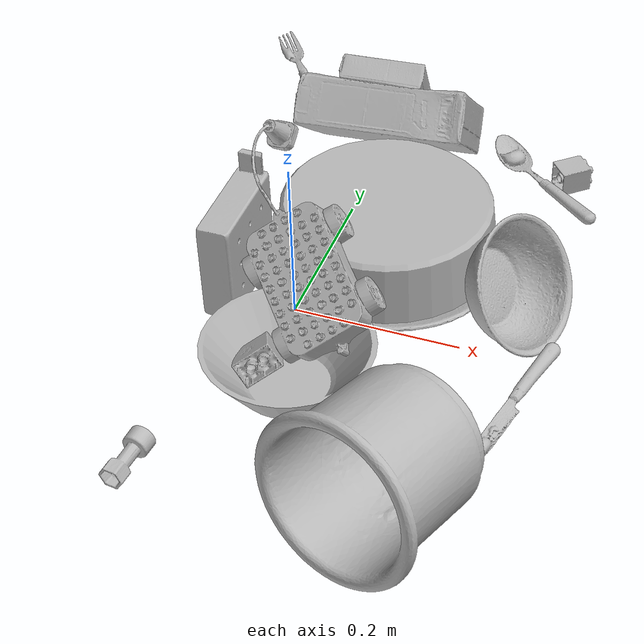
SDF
<sdf version="1.4">
  <world name="default">
    <light name="light1" type="point">
      <pose>0 0 1 0 0 0</pose>
      <diffuse>3 3 3 1</diffuse>
      <specular>3 3 3 1</specular>
    </light>
    <light name="light2" type="point">
      <pose>0 0.5 2 0 0 0</pose>
      <diffuse>1 1 1 1</diffuse>
      <specular>1 1 1 1</specular>
    </light>
    <light name="light3" type="point">
      <pose>0 0.5 2 0 0 0</pose>
      <diffuse>3 3 3 1</diffuse>
      <specular>3 3 3 1</specular>
    </light>
    <scene>
      <ambient>0.7 0.7 0.7</ambient>
    </scene>
    <model name="plate1">
      <link name="link_plate1">
        <collision name="default">
          <geometry>
            <mesh>
              <uri>model://plate/collision_meshes/collision.obj</uri>
              <scale>1.0 1.0 1.0</scale>
            </mesh>
          </geometry>
          <surface>
            <friction>
              <ode>
                <mu>0.5</mu>
                <mu2>0.5</mu2>
              </ode>
            </friction>
          <contact>
        <ode>
            <max_vel>0</max_vel>
            <min_depth>0.0001</min_depth>
            <kp>1e8</kp>
        </ode>
    </contact></surface>
        </collision>
        <visual name="default">
          <geometry>
            <mesh>
              <uri>model://plate/visual_meshes/visual.dae</uri>
              <scale>1.0 1.0 1.0</scale>
            </mesh>
          </geometry>
        </visual>
        <inertial>
          <mass>0.2518167495727539</mass>
          <pose>-0.000604460306931287 0.0002782583760563284 -0.001056198962032795 0.0022187362427659595 -0.003225514577586686 0.4526257716004426</pose>
          <inertia>
            <ixx>0.0011780038</ixx>
            <iyy>0.001166737</iyy>
            <izz>0.0023039998</izz>
            <ixy>0</ixy>
            <ixz>0</ixz>
            <iyz>0</iyz>
          </inertia>
        </inertial>
      </link>
      <pose>0.08734126389026642 0.09960268437862396 0.013735280372202396 -3.3794641436700835e-05 7.11406704799649e-06 2.4892262799198885</pose>
    </model>
    <model name="plate2">
      <link name="link_plate2">
        <collision name="default">
          <geometry>
            <mesh>
              <uri>model://pan_tefal/collision_meshes/collision.obj</uri>
              <scale>1.0 1.0 1.0</scale>
            </mesh>
          </geometry>
          <surface>
            <friction>
              <ode>
                <mu>0.5</mu>
                <mu2>0.5</mu2>
              </ode>
            </friction>
          <contact>
        <ode>
            <max_vel>0</max_vel>
            <min_depth>0.0001</min_depth>
            <kp>1e8</kp>
        </ode>
    </contact></surface>
        </collision>
        <visual name="default">
          <geometry>
            <mesh>
              <uri>model://pan_tefal/visual_meshes/visual.dae</uri>
              <scale>1.0 1.0 1.0</scale>
            </mesh>
          </geometry>
        </visual>
        <inertial>
          <mass>1.062379002571106</mass>
          <pose>-0.00018001841090153903 3.2791107514640316e-05 -0.008514937944710255 0.0008190335190592257 -0.00033013878845789875 -0.3318630487039029</pose>
          <inertia>
            <ixx>0.0073335525</ixx>
            <iyy>0.007380832</iyy>
            <izz>0.013499655</izz>
            <ixy>0</ixy>
            <ixz>0</ixz>
            <iyz>0</iyz>
          </inertia>
        </inertial>
      </link>
      <pose>0.07584961503744125 0.10848361253738403 0.06423328071832657 -3.1386706964040383 -0.00010818042208900348 1.8846980799740933</pose>
    </model>
    <model name="bowl1">
      <link name="link_bowl1">
        <collision name="default">
          <geometry>
            <mesh>
              <uri>model://bowl/collision_meshes/collision.obj</uri>
              <scale>1.0 1.0 1.0</scale>
            </mesh>
          </geometry>
          <surface>
            <friction>
              <ode>
                <mu>0.5</mu>
                <mu2>0.5</mu2>
              </ode>
            </friction>
          <contact>
        <ode>
            <max_vel>0</max_vel>
            <min_depth>0.0001</min_depth>
            <kp>1e8</kp>
        </ode>
    </contact></surface>
        </collision>
        <visual name="default">
          <geometry>
            <mesh>
              <uri>model://bowl/visual_meshes/visual.dae</uri>
              <scale>1.0 1.0 1.0</scale>
            </mesh>
          </geometry>
        </visual>
        <inertial>
          <mass>0.06917417049407959</mass>
          <pose>0.00020445069822017103 -0.0010302119189873338 -0.0008042645640671253 -0.015764106225313407 0.014546789960746879 0.7140402093907182</pose>
          <inertia>
            <ixx>0.00015889853</ixx>
            <iyy>0.00015534814</iyy>
            <izz>0.000267322</izz>
            <ixy>0</ixy>
            <ixz>0</ixz>
            <iyz>0</iyz>
          </inertia>
        </inertial>
      </link>
      <pose>0.2408418506383896 0.05480090156197548 0.058408938348293304 0.6774179743667136 -0.8796479893817291 2.0428107588080735</pose>
    </model>
    <model name="bowl2">
      <link name="link_bowl2">
        <collision name="default">
          <geometry>
            <mesh>
              <uri>model://bowl_a/collision_meshes/collision.obj</uri>
              <scale>1.0 1.0 1.0</scale>
            </mesh>
          </geometry>
          <surface>
            <friction>
              <ode>
                <mu>0.5</mu>
                <mu2>0.5</mu2>
              </ode>
            </friction>
          <contact>
        <ode>
            <max_vel>0</max_vel>
            <min_depth>0.0001</min_depth>
            <kp>1e8</kp>
        </ode>
    </contact></surface>
        </collision>
        <visual name="default">
          <geometry>
            <mesh>
              <uri>model://bowl_a/visual_meshes/visual.dae</uri>
              <scale>1.0 1.0 1.0</scale>
            </mesh>
          </geometry>
        </visual>
        <inertial>
          <mass>0.33581992983818054</mass>
          <pose>0.00027867587050423026 4.7312365495599806e-05 -0.0013765293406322598 -0.0009805275277335347 -0.0010938264345752996 -0.19124334191203107</pose>
          <inertia>
            <ixx>0.00095609494</ixx>
            <iyy>0.0009619646</iyy>
            <izz>0.0017004515</izz>
            <ixy>0</ixy>
            <ixz>0</ixz>
            <iyz>0</iyz>
          </inertia>
        </inertial>
      </link>
      <pose>0.039850324392318726 -0.11847507208585739 0.030383100733160973 1.6933521376649992e-05 -4.993995628672537e-06 -0.4973925627578261</pose>
    </model>
    <model name="silverware1">
      <link name="link_silverware1">
        <collision name="default">
          <geometry>
            <mesh>
              <uri>model://spoon/collision_meshes/collision.obj</uri>
              <scale>1.0 1.0 1.0</scale>
            </mesh>
          </geometry>
          <surface>
            <friction>
              <ode>
                <mu>0.5</mu>
                <mu2>0.5</mu2>
              </ode>
            </friction>
          <contact>
        <ode>
            <max_vel>0</max_vel>
            <min_depth>0.0001</min_depth>
            <kp>1e8</kp>
        </ode>
    </contact></surface>
        </collision>
        <visual name="default">
          <geometry>
            <mesh>
              <uri>model://spoon/visual_meshes/visual.dae</uri>
              <scale>1.0 1.0 1.0</scale>
            </mesh>
          </geometry>
        </visual>
        <inertial>
          <mass>0.02635110728442669</mass>
          <pose>-0.005526317283511162 -0.0016034177970141172 -0.0007271651993505657 0.03521639754710896 -0.03906583271405073 0.0061506130160543454</pose>
          <inertia>
            <ixx>1.4656912e-06</ixx>
            <iyy>0.0001002651</iyy>
            <izz>0.00010098792</izz>
            <ixy>0</ixy>
            <ixz>0</ixz>
            <iyz>0</iyz>
          </inertia>
        </inertial>
      </link>
      <pose>0.21236814558506012 0.3212965726852417 0.008385262452065945 0.006729210583712175 0.026892997453184735 2.475580112659157</pose>
    </model>
    <model name="box1">
      <link name="link_box1">
        <collision name="default">
          <geometry>
            <mesh>
              <uri>model://cracker_box/collision_meshes/collision.obj</uri>
              <scale>1.0 1.0 1.0</scale>
            </mesh>
          </geometry>
          <surface>
            <friction>
              <ode>
                <mu>0.5</mu>
                <mu2>0.5</mu2>
              </ode>
            </friction>
          <contact>
        <ode>
            <max_vel>0</max_vel>
            <min_depth>0.0001</min_depth>
            <kp>1e8</kp>
        </ode>
    </contact></surface>
        </collision>
        <visual name="default">
          <geometry>
            <mesh>
              <uri>model://cracker_box/visual_meshes/visual.dae</uri>
              <scale>1.0 1.0 1.0</scale>
            </mesh>
          </geometry>
        </visual>
        <inertial>
          <mass>1.9942995309829712</mass>
          <pose>0.0009464178583584726 0.00025434247800149024 -0.0017029533628374338 -0.00031620747948387436 -0.011106490532043566 0.0025467943028284904</pose>
          <inertia>
            <ixx>0.005072607</ixx>
            <iyy>0.008375872</iyy>
            <izz>0.011953138</izz>
            <ixy>0</ixy>
            <ixz>0</ixz>
            <iyz>0</iyz>
          </inertia>
        </inertial>
      </link>
      <pose>0.012632547877728939 0.30876708030700684 0.07664789259433746 0.6866199874135077 0.016264642174886622 -3.044724762795033</pose>
    </model>
    <model name="box2">
      <link name="link_box2">
        <collision name="default">
          <geometry>
            <mesh>
              <uri>model://pudding_box/collision_meshes/collision.obj</uri>
              <scale>1.0 1.0 1.0</scale>
            </mesh>
          </geometry>
          <surface>
            <friction>
              <ode>
                <mu>0.5</mu>
                <mu2>0.5</mu2>
              </ode>
            </friction>
          <contact>
        <ode>
            <max_vel>0</max_vel>
            <min_depth>0.0001</min_depth>
            <kp>1e8</kp>
        </ode>
    </contact></surface>
        </collision>
        <visual name="default">
          <geometry>
            <mesh>
              <uri>model://pudding_box/visual_meshes/visual.dae</uri>
              <scale>1.0 1.0 1.0</scale>
            </mesh>
          </geometry>
        </visual>
        <inertial>
          <mass>0.5201411247253418</mass>
          <pose>0.0004894821904599667 0.0008067885646596551 -0.0005188828217796981 0.00521310178321913 -0.006603799649863257 0.020079825157321304</pose>
          <inertia>
            <ixx>0.0005879929</ixx>
            <iyy>0.00039560578</iyy>
            <izz>0.00086832506</izz>
            <ixy>0</ixy>
            <ixz>0</ixz>
            <iyz>0</iyz>
          </inertia>
        </inertial>
      </link>
      <pose>-0.029697224497795105 0.41223445534706116 0.04556301236152649 -0.01616737904032394 -0.9869502490026353 -1.477855834738513</pose>
    </model>
    <model name="cup1">
      <link name="link_cup1">
        <collision name="default">
          <geometry>
            <mesh>
              <uri>model://i_cups/collision_meshes/collision.obj</uri>
              <scale>2.0 2.0 2.0</scale>
            </mesh>
          </geometry>
          <surface>
            <friction>
              <ode>
                <mu>0.5</mu>
                <mu2>0.5</mu2>
              </ode>
            </friction>
          <contact>
        <ode>
            <max_vel>0</max_vel>
            <min_depth>0.0001</min_depth>
            <kp>1e8</kp>
        </ode>
    </contact></surface>
        </collision>
        <visual name="default">
          <geometry>
            <mesh>
              <uri>model://i_cups/visual_meshes/visual.dae</uri>
              <scale>2.0 2.0 2.0</scale>
            </mesh>
          </geometry>
        </visual>
        <inertial>
          <mass>0.946932315826416</mass>
          <pose>0.00022480011102743447 0.0003359477559570223 -0.0017158038681373 -0.02898277199923076 -0.03987335280003036 -0.34591530516328983</pose>
          <inertia>
            <ixx>0.005244167</ixx>
            <iyy>0.0052903723</iyy>
            <izz>0.005861205</izz>
            <ixy>0</ixy>
            <ixz>0</ixz>
            <iyz>0</iyz>
          </inertia>
        </inertial>
      </link>
      <pose>0.20122213661670685 -0.2834566831588745 0.08981359750032425 1.3919871233016847 -0.8573865932851692 -0.19717140082337198</pose>
    </model>
    <model name="silverware2">
      <link name="link_silverware2">
        <collision name="default">
          <geometry>
            <mesh>
              <uri>model://fork/collision_meshes/collision.obj</uri>
              <scale>1.0 1.0 1.0</scale>
            </mesh>
          </geometry>
          <surface>
            <friction>
              <ode>
                <mu>0.5</mu>
                <mu2>0.5</mu2>
              </ode>
            </friction>
          <contact>
        <ode>
            <max_vel>0</max_vel>
            <min_depth>0.0001</min_depth>
            <kp>1e8</kp>
        </ode>
    </contact></surface>
        </collision>
        <visual name="default">
          <geometry>
            <mesh>
              <uri>model://fork/visual_meshes/visual.dae</uri>
              <scale>1.0 1.0 1.0</scale>
            </mesh>
          </geometry>
        </visual>
        <inertial>
          <mass>0.03207480534911156</mass>
          <pose>-0.02957005240023136 0.00046588238910771906 0.0003218861820641905 -0.013551414501779666 -0.010977842682601763 0.014453906756127453</pose>
          <inertia>
            <ixx>1.1244033e-06</ixx>
            <iyy>8.373807e-05</iyy>
            <izz>8.424099e-05</izz>
            <ixy>0</ixy>
            <ixz>0</ixz>
            <iyz>0</iyz>
          </inertia>
        </inertial>
      </link>
      <pose>-0.16617050766944885 0.45873767137527466 0.0056868321262300014 -0.1903537187953477 0.024804788572549252 2.1859937553799837</pose>
    </model>
    <model name="silverware3">
      <link name="link_silverware3">
        <collision name="default">
          <geometry>
            <mesh>
              <uri>model://knife/collision_meshes/collision.obj</uri>
              <scale>1.0 1.0 1.0</scale>
            </mesh>
          </geometry>
          <surface>
            <friction>
              <ode>
                <mu>0.5</mu>
                <mu2>0.5</mu2>
              </ode>
            </friction>
          <contact>
        <ode>
            <max_vel>0</max_vel>
            <min_depth>0.0001</min_depth>
            <kp>1e8</kp>
        </ode>
    </contact></surface>
        </collision>
        <visual name="default">
          <geometry>
            <mesh>
              <uri>model://knife/visual_meshes/visual.dae</uri>
              <scale>1.0 1.0 1.0</scale>
            </mesh>
          </geometry>
        </visual>
        <inertial>
          <mass>0.02260335348546505</mass>
          <pose>-0.023785259574651718 0.0015275129117071629 5.062025593360886e-05 0.073049853839256 0.017248417767033373 -0.0074098225522862896</pose>
          <inertia>
            <ixx>6.41575e-07</ixx>
            <iyy>8.6838445e-05</iyy>
            <izz>8.704508e-05</izz>
            <ixy>0</ixy>
            <ixz>0</ixz>
            <iyz>0</iyz>
          </inertia>
        </inertial>
      </link>
      <pose>0.2838091552257538 -0.07523642480373383 0.005810650996863842 2.889232089060155 0.025909041899575803 -1.7825161943477856</pose>
    </model>
    <model name="toy1">
      <link name="link_toy1">
        <collision name="default">
          <geometry>
            <mesh>
              <uri>model://nine_hole_peg_test/collision_meshes/collision.obj</uri>
              <scale>1.0 1.0 1.0</scale>
            </mesh>
          </geometry>
          <surface>
            <friction>
              <ode>
                <mu>0.5</mu>
                <mu2>0.5</mu2>
              </ode>
            </friction>
          <contact>
        <ode>
            <max_vel>0</max_vel>
            <min_depth>0.0001</min_depth>
            <kp>1e8</kp>
        </ode>
    </contact></surface>
        </collision>
        <visual name="default">
          <geometry>
            <mesh>
              <uri>model://nine_hole_peg_test/visual_meshes/visual.dae</uri>
              <scale>1.0 1.0 1.0</scale>
            </mesh>
          </geometry>
        </visual>
        <inertial>
          <mass>0.3368244469165802</mass>
          <pose>-0.0046173869632184505 -0.009647615253925323 2.6460689696250483e-05 -0.001466679946039042 0.000719417968587533 -0.6342416610336568</pose>
          <inertia>
            <ixx>0.00052668044</ixx>
            <iyy>0.000491756</iyy>
            <izz>0.00092289934</izz>
            <ixy>0</ixy>
            <ixz>0</ixz>
            <iyz>0</iyz>
          </inertia>
        </inertial>
      </link>
      <pose>-0.07858444005250931 0.02613038942217827 0.07401725649833679 1.558512712509534 -0.007624693521715644 1.5704138414769788</pose>
    </model>
    <model name="toy2">
      <link name="link_toy2">
        <collision name="default">
          <geometry>
            <mesh>
              <uri>model://c_toy_airplane/collision_meshes/collision.obj</uri>
              <scale>1.0 1.0 1.0</scale>
            </mesh>
          </geometry>
          <surface>
            <friction>
              <ode>
                <mu>0.5</mu>
                <mu2>0.5</mu2>
              </ode>
            </friction>
          <contact>
        <ode>
            <max_vel>0</max_vel>
            <min_depth>0.0001</min_depth>
            <kp>1e8</kp>
        </ode>
    </contact></surface>
        </collision>
        <visual name="default">
          <geometry>
            <mesh>
              <uri>model://c_toy_airplane/visual_meshes/visual.dae</uri>
              <scale>1.0 1.0 1.0</scale>
            </mesh>
          </geometry>
        </visual>
        <inertial>
          <mass>0.025849465280771255</mass>
          <pose>-0.000230242803809233 -4.4294804979472246e-07 -0.006080531980842352 -0.006193997552816779 -0.016797268968147806 0.7655666586292194</pose>
          <inertia>
            <ixx>1.1869546e-05</ixx>
            <iyy>1.1836047e-05</iyy>
            <izz>2.7867347e-06</izz>
            <ixy>0</ixy>
            <ixz>0</ixz>
            <iyz>0</iyz>
          </inertia>
        </inertial>
      </link>
      <pose>-0.07515498250722885 -0.28962981700897217 0.014860676601529121 -1.6422933684888652 -0.8111693947891762 3.0653216736005233</pose>
    </model>
    <model name="toy3">
      <link name="link_toy3">
        <collision name="default">
          <geometry>
            <mesh>
              <uri>model://g_lego_duplo/collision_meshes/collision.obj</uri>
              <scale>1.0 1.0 1.0</scale>
            </mesh>
          </geometry>
          <surface>
            <friction>
              <ode>
                <mu>0.5</mu>
                <mu2>0.5</mu2>
              </ode>
            </friction>
          <contact>
        <ode>
            <max_vel>0</max_vel>
            <min_depth>0.0001</min_depth>
            <kp>1e8</kp>
        </ode>
    </contact></surface>
        </collision>
        <visual name="default">
          <geometry>
            <mesh>
              <uri>model://g_lego_duplo/visual_meshes/visual.dae</uri>
              <scale>1.0 1.0 1.0</scale>
            </mesh>
          </geometry>
        </visual>
        <inertial>
          <mass>0.44857048988342285</mass>
          <pose>-0.05004768818616867 0.0017554624937474728 0.0038806761149317026 0.010962989380518968 0.03810827633819491 -0.09653029550410545</pose>
          <inertia>
            <ixx>0.0006499838</ixx>
            <iyy>0.00196511</iyy>
            <izz>0.0024584262</izz>
            <ixy>0</ixy>
            <ixz>0</ixz>
            <iyz>0</iyz>
          </inertia>
        </inertial>
      </link>
      <pose>0.0020333826541900635 0.0017877519130706787 0.1107356995344162 -0.6125642491484203 -0.3997691815545419 2.3211056448404577</pose>
    </model>
    <model name="toy4">
      <link name="link_toy4">
        <collision name="default">
          <geometry>
            <mesh>
              <uri>model://b_lego_duplo/collision_meshes/collision.obj</uri>
              <scale>1.0 1.0 1.0</scale>
            </mesh>
          </geometry>
          <surface>
            <friction>
              <ode>
                <mu>0.5</mu>
                <mu2>0.5</mu2>
              </ode>
            </friction>
          <contact>
        <ode>
            <max_vel>0</max_vel>
            <min_depth>0.0001</min_depth>
            <kp>1e8</kp>
        </ode>
    </contact></surface>
        </collision>
        <visual name="default">
          <geometry>
            <mesh>
              <uri>model://b_lego_duplo/visual_meshes/visual.dae</uri>
              <scale>1.0 1.0 1.0</scale>
            </mesh>
          </geometry>
        </visual>
        <inertial>
          <mass>0.028142115101218224</mass>
          <pose>-0.00011053047637687996 -9.15253895072965e-06 0.0019294291269034147 -0.03749502345465157 -0.02635389323626884 0.4519044936865358</pose>
          <inertia>
            <ixx>5.759495e-06</ixx>
            <iyy>5.798213e-06</iyy>
            <izz>5.1315224e-06</izz>
            <ixy>0</ixy>
            <ixz>0</ixz>
            <iyz>0</iyz>
          </inertia>
        </inertial>
      </link>
      <pose>0.24691861867904663 0.33703669905662537 0.01612129807472229 1.572377299197238 -0.012011112436373697 2.2894010072051283</pose>
    </model>
    <model name="toy5">
      <link name="link_toy5">
        <collision name="default">
          <geometry>
            <mesh>
              <uri>model://d_lego_duplo/collision_meshes/collision.obj</uri>
              <scale>1.0 1.0 1.0</scale>
            </mesh>
          </geometry>
          <surface>
            <friction>
              <ode>
                <mu>0.5</mu>
                <mu2>0.5</mu2>
              </ode>
            </friction>
          <contact>
        <ode>
            <max_vel>0</max_vel>
            <min_depth>0.0001</min_depth>
            <kp>1e8</kp>
        </ode>
    </contact></surface>
        </collision>
        <visual name="default">
          <geometry>
            <mesh>
              <uri>model://d_lego_duplo/visual_meshes/visual.dae</uri>
              <scale>1.0 1.0 1.0</scale>
            </mesh>
          </geometry>
        </visual>
        <inertial>
          <mass>0.03456217050552368</mass>
          <pose>0.00283056334592402 0.00016366186900995672 0.0008589798817411065 0.08010865489808279 -0.3835519084219494 0.001029683970252444</pose>
          <inertia>
            <ixx>6.6907255e-06</ixx>
            <iyy>9.495956e-06</iyy>
            <izz>9.1575175e-06</izz>
            <ixy>0</ixy>
            <ixz>0</ixz>
            <iyz>0</iyz>
          </inertia>
        </inertial>
      </link>
      <pose>0.002809002064168453 -0.11909451335668564 0.027744244784116745 -1.9821780330915155 -0.4891887323667771 0.6258404203922304</pose>
    </model>
  <physics type="ode">
      <max_contacts>50</max_contacts>
      <ode>
        <solver>
          <type>quick</type>
          <iters>75</iters>
        </solver>
        <constraints>
          <contact_max_correcting_vel>0</contact_max_correcting_vel>
          <contact_surface_layer>0</contact_surface_layer>
        </constraints>
      </ode>
    </physics></world>
</sdf>
